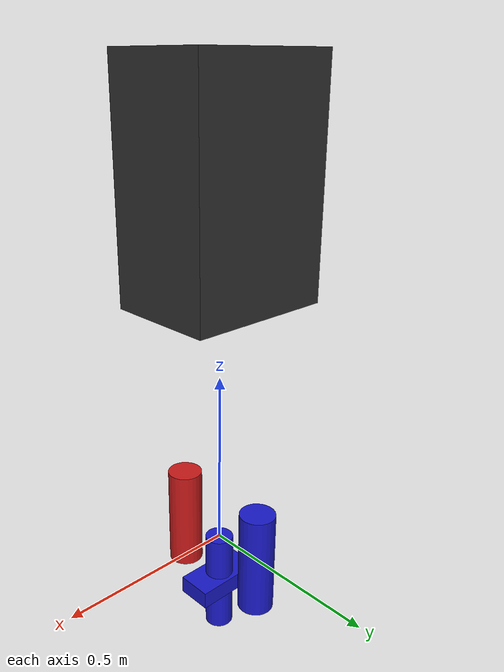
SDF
<?xml version="1.0" ?>
<sdf version="1.6">
  <model name="titanfall_exosuit">

    <!-- Base link (torso) -->
    <link name="base_link">
      <pose>0 0 1.0 0 0 0</pose>
      <inertial>
        <mass>50.0</mass>
        <inertia>
          <ixx>2.0</ixx>
          <iyy>2.0</iyy>
          <izz>2.0</izz>
          <ixy>0</ixy>
          <ixz>0</ixz>
          <iyz>0</iyz>
        </inertia>
      </inertial>
      <collision name="collision">
        <geometry>
          <box>
            <size>0.4 0.3 0.6</size>
          </box>
        </geometry>
      </collision>
      <visual name="visual">
        <geometry>
          <box>
            <size>0.4 0.3 0.6</size>
          </box>
        </geometry>
        <material>
          <ambient>0.2 0.2 0.2 1</ambient>
          <diffuse>0.2 0.2 0.2 1</diffuse>
          <specular>0.2 0.2 0.2 1</specular>
        </material>
      </visual>
    </link>

    <!-- Left hip joint -->
    <joint name="hip_left" type="revolute">
      <parent>base_link</parent>
      <child>thigh_left</child>
      <pose>0 0.15 0.2 0 0 0</pose>
      <axis>
        <xyz>1 0 0</xyz>
        <limit>
          <lower>-1.57</lower>
          <upper>1.57</upper>
          <effort>200</effort>
          <velocity>10</velocity>
        </limit>
        <dynamics>
          <damping>0.1</damping>
          <friction>0.1</friction>
        </dynamics>
      </axis>
    </joint>

    <!-- Left thigh -->
    <link name="thigh_left">
      <pose>0 0.15 0.0 0 0 0</pose>
      <inertial>
        <mass>8.0</mass>
        <inertia>
          <ixx>0.1</ixx>
          <iyy>0.1</iyy>
          <izz>0.1</izz>
          <ixy>0</ixy>
          <ixz>0</ixz>
          <iyz>0</iyz>
        </inertia>
      </inertial>
      <collision name="collision">
        <geometry>
          <cylinder>
            <radius>0.05</radius>
            <length>0.3</length>
          </cylinder>
        </geometry>
      </collision>
      <visual name="visual">
        <geometry>
          <cylinder>
            <radius>0.05</radius>
            <length>0.3</length>
          </cylinder>
        </geometry>
        <material>
          <ambient>0.1 0.1 0.8 1</ambient>
          <diffuse>0.1 0.1 0.8 1</diffuse>
          <specular>0.1 0.1 0.8 1</specular>
        </material>
      </visual>
    </link>

    <!-- Left knee joint -->
    <joint name="knee_left" type="revolute">
      <parent>thigh_left</parent>
      <child>shin_left</child>
      <pose>0 0 -0.15 0 0 0</pose>
      <axis>
        <xyz>1 0 0</xyz>
        <limit>
          <lower>0</lower>
          <upper>3.14</upper>
          <effort>200</effort>
          <velocity>10</velocity>
        </limit>
        <dynamics>
          <damping>0.1</damping>
          <friction>0.1</friction>
        </dynamics>
      </axis>
    </joint>

    <!-- Left shin -->
    <link name="shin_left">
      <pose>0 0 -0.15 0 0 0</pose>
      <inertial>
        <mass>5.0</mass>
        <inertia>
          <ixx>0.05</ixx>
          <iyy>0.05</iyy>
          <izz>0.05</izz>
          <ixy>0</ixy>
          <ixz>0</ixz>
          <iyz>0</iyz>
        </inertia>
      </inertial>
      <collision name="collision">
        <geometry>
          <cylinder>
            <radius>0.04</radius>
            <length>0.3</length>
          </cylinder>
        </geometry>
      </collision>
      <visual name="visual">
        <geometry>
          <cylinder>
            <radius>0.04</radius>
            <length>0.3</length>
          </cylinder>
        </geometry>
        <material>
          <ambient>0.1 0.1 0.8 1</ambient>
          <diffuse>0.1 0.1 0.8 1</diffuse>
          <specular>0.1 0.1 0.8 1</specular>
        </material>
      </visual>
    </link>

    <!-- Left ankle joint -->
    <joint name="ankle_left" type="revolute">
      <parent>shin_left</parent>
      <child>foot_left</child>
      <pose>0 0 -0.15 0 0 0</pose>
      <axis>
        <xyz>1 0 0</xyz>
        <limit>
          <lower>-0.5</lower>
          <upper>0.5</upper>
          <effort>100</effort>
          <velocity>5</velocity>
        </limit>
        <dynamics>
          <damping>0.1</damping>
          <friction>0.1</friction>
        </dynamics>
      </axis>
    </joint>

    <!-- Left foot -->
    <link name="foot_left">
      <pose>0 0 -0.15 0 0 0</pose>
      <inertial>
        <mass>2.0</mass>
        <inertia>
          <ixx>0.01</ixx>
          <iyy>0.01</iyy>
          <izz>0.01</izz>
          <ixy>0</ixy>
          <ixz>0</ixz>
          <iyz>0</iyz>
        </inertia>
      </inertial>
      <collision name="collision">
        <geometry>
          <box>
            <size>0.2 0.1 0.05</size>
          </box>
        </geometry>
      </collision>
      <visual name="visual">
        <geometry>
          <box>
            <size>0.2 0.1 0.05</size>
          </box>
        </geometry>
        <material>
          <ambient>0.1 0.1 0.8 1</ambient>
          <diffuse>0.1 0.1 0.8 1</diffuse>
          <specular>0.1 0.1 0.8 1</specular>
        </material>
      </visual>
    </link>

    <!-- Right hip joint -->
    <joint name="hip_right" type="revolute">
      <parent>base_link</parent>
      <child>thigh_right</child>
      <pose>0 -0.15 0.2 0 0 0</pose>
      <axis>
        <xyz>1 0 0</xyz>
        <limit>
          <lower>-1.57</lower>
          <upper>1.57</upper>
          <effort>200</effort>
          <velocity>10</velocity>
        </limit>
        <dynamics>
          <damping>0.1</damping>
          <friction>0.1</friction>
        </dynamics>
      </axis>
    </joint>

    <!-- Right thigh -->
    <link name="thigh_right">
      <pose>0 -0.15 0.0 0 0 0</pose>
      <inertial>
        <mass>8.0</mass>
        <inertia>
          <ixx>0.1</ixx>
          <iyy>0.1</iyy>
          <izz>0.1</izz>
          <ixy>0</ixy>
          <ixz>0</ixz>
          <iyz>0</iyz>
        </inertia>
      </inertial>
      <collision name="collision">
        <geometry>
          <cylinder>
            <radius>0.05</radius>
            <length>0.3</length>
          </cylinder>
        </geometry>
      </collision>
      <visual name="visual">
        <geometry>
          <cylinder>
            <radius>0.05</radius>
            <length>0.3</length>
          </cylinder>
        </geometry>
        <material>
          <ambient>0.8 0.1 0.1 1</ambient>
          <diffuse>0.8 0.1 0.1 1</diffuse>
          <specular>0.8 0.1 0.1 1</specular>
        </material>
      </visual>
    </link>

    <!-- Right knee joint -->
    <joint name="knee_right" type="revolute">
      <parent>thigh_right</parent>
      <child>shin_right</child>
      <pose>0 0 -0.15 0 0 0</pose>
      <axis>
        <xyz>1 0 0</xyz>
        <limit>
          <lower>0</lower>
          <upper>3.14</upper>
          <effort>200</effort>
          <velocity>10</velocity>
        </limit>
        <dynamics>
          <damping>0.1</damping>
          <friction>0.1</friction>
        </dynamics>
      </axis>
    </joint>

    <!-- Right shin -->
    <link name="shin_right">
      <pose>0 0 -0.15 0 0 0</pose>
      <inertial>
        <mass>5.0</mass>
        <inertia>
          <ixx>0.05</ixx>
          <iyy>0.05</iyy>
          <izz>0.05</izz>
          <ixy>0</ixy>
          <ixz>0</ixz>
          <iyz>0</iyz>
        </inertia>
      </inertial>
      <collision name="collision">
        <geometry>
          <cylinder>
            <radius>0.04</radius>
            <length>0.3</length>
          </cylinder>
        </geometry>
      </collision>
      <visual name="visual">
        <geometry>
          <cylinder>
            <radius>0.04</radius>
            <length>0.3</length>
          </cylinder>
        </geometry>
        <material>
          <ambient>0.8 0.1 0.1 1</ambient>
          <diffuse>0.8 0.1 0.1 1</diffuse>
          <specular>0.8 0.1 0.1 1</specular>
        </material>
      </visual>
    </link>

    <!-- Right ankle joint -->
    <joint name="ankle_right" type="revolute">
      <parent>shin_right</parent>
      <child>foot_right</child>
      <pose>0 0 -0.15 0 0 0</pose>
      <axis>
        <xyz>1 0 0</xyz>
        <limit>
          <lower>-0.5</lower>
          <upper>0.5</upper>
          <effort>100</effort>
          <velocity>5</velocity>
        </limit>
        <dynamics>
          <damping>0.1</damping>
          <friction>0.1</friction>
        </dynamics>
      </axis>
    </joint>

    <!-- Right foot -->
    <link name="foot_right">
      <pose>0 0 -0.15 0 0 0</pose>
      <inertial>
        <mass>2.0</mass>
        <inertia>
          <ixx>0.01</ixx>
          <iyy>0.01</iyy>
          <izz>0.01</izz>
          <ixy>0</ixy>
          <ixz>0</ixz>
          <iyz>0</iyz>
        </inertia>
      </inertial>
      <collision name="collision">
        <geometry>
          <box>
            <size>0.2 0.1 0.05</size>
          </box>
        </geometry>
      </collision>
      <visual name="visual">
        <geometry>
          <box>
            <size>0.2 0.1 0.05</size>
          </box>
        </geometry>
        <material>
          <ambient>0.8 0.1 0.1 1</ambient>
          <diffuse>0.8 0.1 0.1 1</diffuse>
          <specular>0.8 0.1 0.1 1</specular>
        </material>
      </visual>
    </link>

    <!-- IMU sensor -->
    <link name="imu_link">
      <pose>0 0 0.3 0 0 0</pose>
      <inertial>
        <mass>0.1</mass>
        <inertia>
          <ixx>0.001</ixx>
          <iyy>0.001</iyy>
          <izz>0.001</izz>
          <ixy>0</ixy>
          <ixz>0</ixz>
          <iyz>0</iyz>
        </inertia>
      </inertial>
    </link>

    <joint name="imu_joint" type="fixed">
      <parent>base_link</parent>
      <child>imu_link</child>
    </joint>

    <!-- Plugin for ROS 2 control -->
    <plugin name="ros2_control" filename="libgazebo_ros2_control.so">
      <parameters>$(find titanfall_ai)/config/ros_topics.yaml</parameters>
    </plugin>

  </model>
</sdf>
